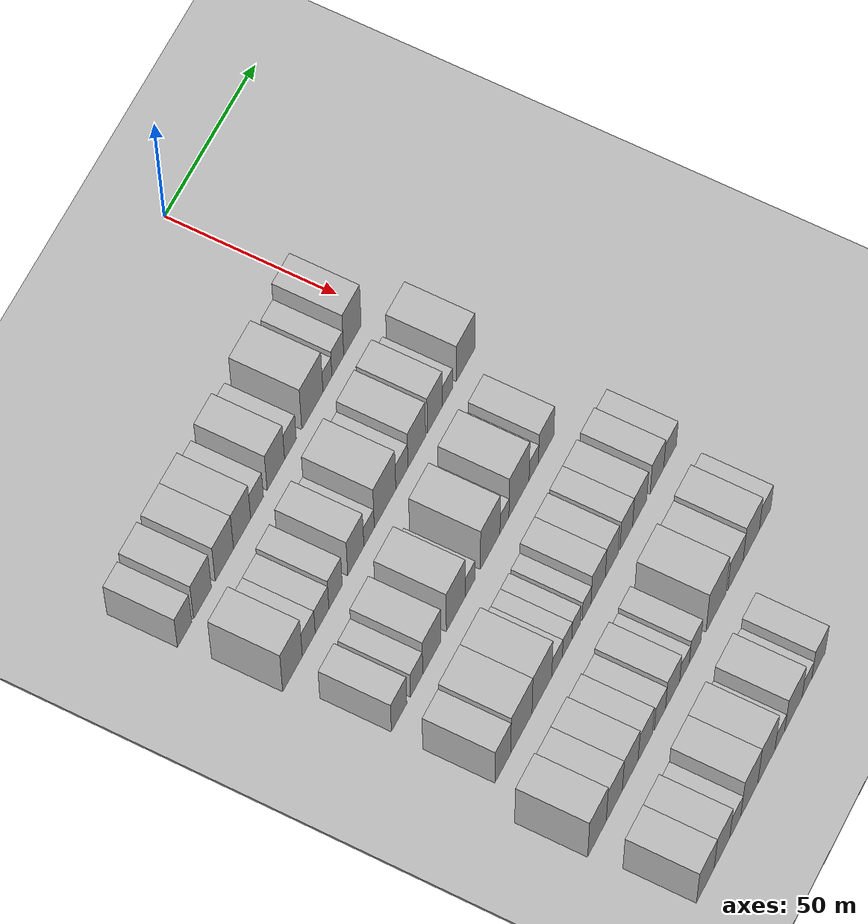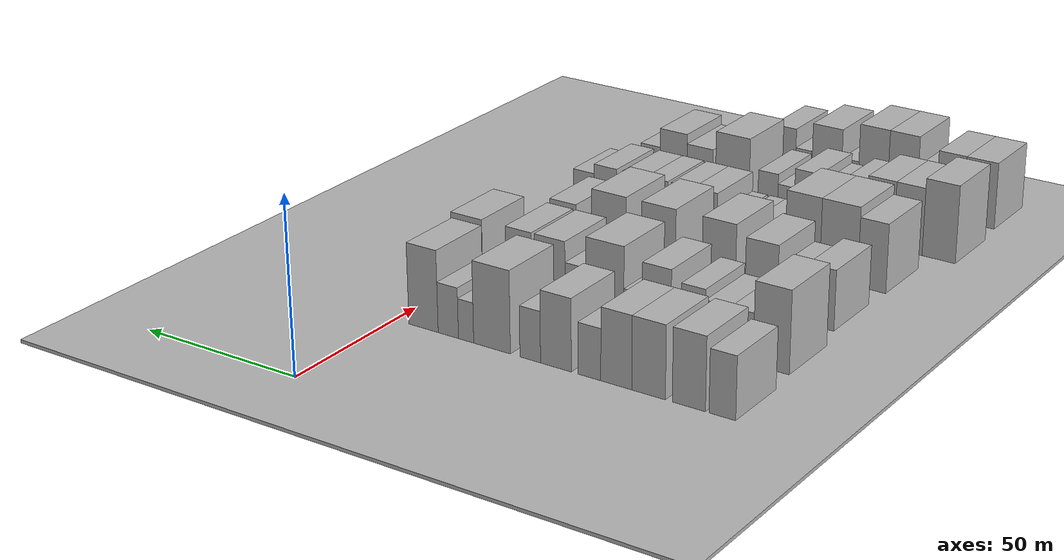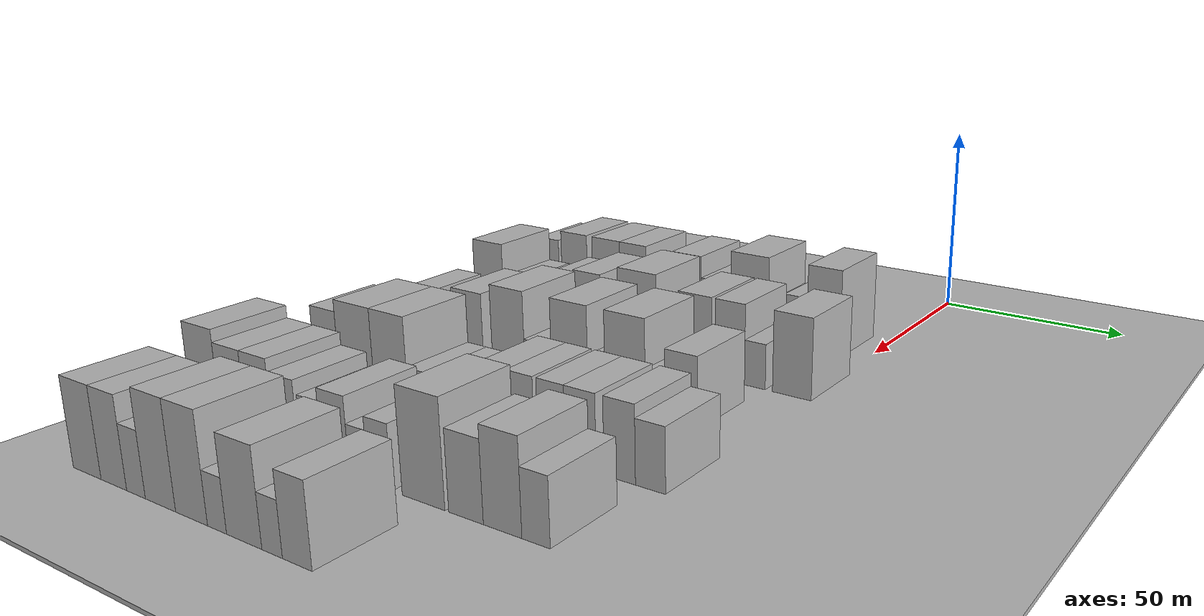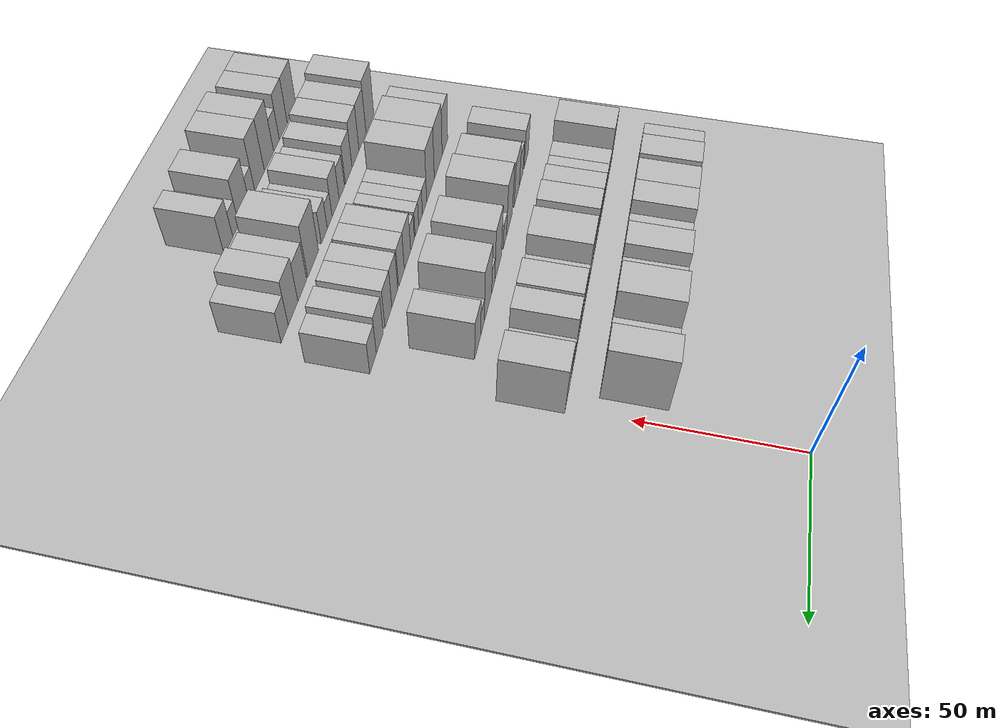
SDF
<sdf version="1.6">
 <world name="default">
  <include><name>ground_plane_1</name><uri>model://HANNAS_ground_plane</uri></include>
  <include>
   <name>ground_plane_2</name>
   <uri>model://HANNAS_ground_plane</uri>
   <pose>100 0 0  0 0 0</pose>
  </include>
  <model name="building_44">
   <static>1</static>
   <pose>50.0000 -101.7398 0 0.000000 0.000000 0.000000</pose>
   <link name="link">
    <pose>0 0 9.00 0 0 0</pose>
    <collision name="collision"><geometry><box><size>20.0000 7.5646 18.0000</size></box></geometry></collision>
    <visual name="visual">
     <cast_shadows>0</cast_shadows>
     <geometry><box><size>20.0000 7.5646 18.0000</size></box></geometry>
     <material>
      <script>
       <uri>model://HANNAS_wall/materials/scripts</uri>
       <uri>model://HANNAS_wall/materials/textures</uri>
       <name>vrc/HANNAS_wall</name>
      </script>
     </material>
    </visual>
   </link>
  </model>
  <model name="building_45">
   <static>1</static>
   <pose>50.0000 -92.1891 0 0.000000 0.000000 0.000000</pose>
   <link name="link">
    <pose>0 0 10.50 0 0 0</pose>
    <collision name="collision"><geometry><box><size>20.0000 9.5367 21.0000</size></box></geometry></collision>
    <visual name="visual">
     <cast_shadows>0</cast_shadows>
     <geometry><box><size>20.0000 9.5367 21.0000</size></box></geometry>
     <material>
      <script>
       <uri>model://HANNAS_wall/materials/scripts</uri>
       <uri>model://HANNAS_wall/materials/textures</uri>
       <name>vrc/HANNAS_wall</name>
      </script>
     </material>
    </visual>
   </link>
  </model>
  <model name="building_46">
   <static>1</static>
   <pose>50.0000 -80.4758 0 0.000000 0.000000 0.000000</pose>
   <link name="link">
    <pose>0 0 10.50 0 0 0</pose>
    <collision name="collision"><geometry><box><size>20.0000 9.8900 21.0000</size></box></geometry></collision>
    <visual name="visual">
     <cast_shadows>0</cast_shadows>
     <geometry><box><size>20.0000 9.8900 21.0000</size></box></geometry>
     <material>
      <script>
       <uri>model://HANNAS_wall/materials/scripts</uri>
       <uri>model://HANNAS_wall/materials/textures</uri>
       <name>vrc/HANNAS_wall</name>
      </script>
     </material>
    </visual>
   </link>
  </model>
  <model name="building_47">
   <static>1</static>
   <pose>50.0000 -70.9077 0 0.000000 0.000000 0.000000</pose>
   <link name="link">
    <pose>0 0 10.50 0 0 0</pose>
    <collision name="collision"><geometry><box><size>20.0000 9.2462 21.0000</size></box></geometry></collision>
    <visual name="visual">
     <cast_shadows>0</cast_shadows>
     <geometry><box><size>20.0000 9.2462 21.0000</size></box></geometry>
     <material>
      <script>
       <uri>model://HANNAS_wall/materials/scripts</uri>
       <uri>model://HANNAS_wall/materials/textures</uri>
       <name>vrc/HANNAS_wall</name>
      </script>
     </material>
    </visual>
   </link>
  </model>
  <model name="building_48">
   <static>1</static>
   <pose>50.0000 -62.8196 0 0.000000 0.000000 0.000000</pose>
   <link name="link">
    <pose>0 0 7.50 0 0 0</pose>
    <collision name="collision"><geometry><box><size>20.0000 6.9300 15.0000</size></box></geometry></collision>
    <visual name="visual">
     <cast_shadows>0</cast_shadows>
     <geometry><box><size>20.0000 6.9300 15.0000</size></box></geometry>
     <material>
      <script>
       <uri>model://HANNAS_wall/materials/scripts</uri>
       <uri>model://HANNAS_wall/materials/textures</uri>
       <name>vrc/HANNAS_wall</name>
      </script>
     </material>
    </visual>
   </link>
  </model>
  <model name="building_49">
   <static>1</static>
   <pose>50.0000 -52.5954 0 0.000000 0.000000 0.000000</pose>
   <link name="link">
    <pose>0 0 10.50 0 0 0</pose>
    <collision name="collision"><geometry><box><size>20.0000 9.5186 21.0000</size></box></geometry></collision>
    <visual name="visual">
     <cast_shadows>0</cast_shadows>
     <geometry><box><size>20.0000 9.5186 21.0000</size></box></geometry>
     <material>
      <script>
       <uri>model://HANNAS_wall/materials/scripts</uri>
       <uri>model://HANNAS_wall/materials/textures</uri>
       <name>vrc/HANNAS_wall</name>
      </script>
     </material>
    </visual>
   </link>
  </model>
  <model name="building_50">
   <static>1</static>
   <pose>50.0000 -44.6159 0 0.000000 0.000000 0.000000</pose>
   <link name="link">
    <pose>0 0 7.50 0 0 0</pose>
    <collision name="collision"><geometry><box><size>20.0000 6.4404 15.0000</size></box></geometry></collision>
    <visual name="visual">
     <cast_shadows>0</cast_shadows>
     <geometry><box><size>20.0000 6.4404 15.0000</size></box></geometry>
     <material>
      <script>
       <uri>model://HANNAS_wall/materials/scripts</uri>
       <uri>model://HANNAS_wall/materials/textures</uri>
       <name>vrc/HANNAS_wall</name>
      </script>
     </material>
    </visual>
   </link>
  </model>
  <model name="building_51">
   <static>1</static>
   <pose>50.0000 -32.5329 0 0.000000 0.000000 0.000000</pose>
   <link name="link">
    <pose>0 0 12.00 0 0 0</pose>
    <collision name="collision"><geometry><box><size>20.0000 11.7255 24.0000</size></box></geometry></collision>
    <visual name="visual">
     <cast_shadows>0</cast_shadows>
     <geometry><box><size>20.0000 11.7255 24.0000</size></box></geometry>
     <material>
      <script>
       <uri>model://HANNAS_wall/materials/scripts</uri>
       <uri>model://HANNAS_wall/materials/textures</uri>
       <name>vrc/HANNAS_wall</name>
      </script>
     </material>
    </visual>
   </link>
  </model>
  <model name="building_52">
   <static>1</static>
   <pose>50.0000 -24.2009 0 0.000000 0.000000 0.000000</pose>
   <link name="link">
    <pose>0 0 6.00 0 0 0</pose>
    <collision name="collision"><geometry><box><size>20.0000 4.9386 12.0000</size></box></geometry></collision>
    <visual name="visual">
     <cast_shadows>0</cast_shadows>
     <geometry><box><size>20.0000 4.9386 12.0000</size></box></geometry>
     <material>
      <script>
       <uri>model://HANNAS_wall/materials/scripts</uri>
       <uri>model://HANNAS_wall/materials/textures</uri>
       <name>vrc/HANNAS_wall</name>
      </script>
     </material>
    </visual>
   </link>
  </model>
  <model name="building_53">
   <static>1</static>
   <pose>50.0000 -18.4203 0 0.000000 0.000000 0.000000</pose>
   <link name="link">
    <pose>0 0 7.50 0 0 0</pose>
    <collision name="collision"><geometry><box><size>20.0000 6.6225 15.0000</size></box></geometry></collision>
    <visual name="visual">
     <cast_shadows>0</cast_shadows>
     <geometry><box><size>20.0000 6.6225 15.0000</size></box></geometry>
     <material>
      <script>
       <uri>model://HANNAS_wall/materials/scripts</uri>
       <uri>model://HANNAS_wall/materials/textures</uri>
       <name>vrc/HANNAS_wall</name>
      </script>
     </material>
    </visual>
   </link>
  </model>
  <model name="building_54">
   <static>1</static>
   <pose>50.0000 -10.2577 0 0.000000 0.000000 0.000000</pose>
   <link name="link">
    <pose>0 0 12.00 0 0 0</pose>
    <collision name="collision"><geometry><box><size>20.0000 9.7029 24.0000</size></box></geometry></collision>
    <visual name="visual">
     <cast_shadows>0</cast_shadows>
     <geometry><box><size>20.0000 9.7029 24.0000</size></box></geometry>
     <material>
      <script>
       <uri>model://HANNAS_wall/materials/scripts</uri>
       <uri>model://HANNAS_wall/materials/textures</uri>
       <name>vrc/HANNAS_wall</name>
      </script>
     </material>
    </visual>
   </link>
  </model>
  <model name="building_154">
   <static>1</static>
   <pose>79.0000 -99.0102 0 0.000000 0.000000 0.000000</pose>
   <link name="link">
    <pose>0 0 12.00 0 0 0</pose>
    <collision name="collision"><geometry><box><size>20.0000 10.5636 24.0000</size></box></geometry></collision>
    <visual name="visual">
     <cast_shadows>0</cast_shadows>
     <geometry><box><size>20.0000 10.5636 24.0000</size></box></geometry>
     <material>
      <script>
       <uri>model://HANNAS_wall/materials/scripts</uri>
       <uri>model://HANNAS_wall/materials/textures</uri>
       <name>vrc/HANNAS_wall</name>
      </script>
     </material>
    </visual>
   </link>
  </model>
  <model name="building_155">
   <static>1</static>
   <pose>79.0000 -90.2369 0 0.000000 0.000000 0.000000</pose>
   <link name="link">
    <pose>0 0 7.50 0 0 0</pose>
    <collision name="collision"><geometry><box><size>20.0000 6.9829 15.0000</size></box></geometry></collision>
    <visual name="visual">
     <cast_shadows>0</cast_shadows>
     <geometry><box><size>20.0000 6.9829 15.0000</size></box></geometry>
     <material>
      <script>
       <uri>model://HANNAS_wall/materials/scripts</uri>
       <uri>model://HANNAS_wall/materials/textures</uri>
       <name>vrc/HANNAS_wall</name>
      </script>
     </material>
    </visual>
   </link>
  </model>
  <model name="building_156">
   <static>1</static>
   <pose>79.0000 -83.0344 0 0.000000 0.000000 0.000000</pose>
   <link name="link">
    <pose>0 0 7.50 0 0 0</pose>
    <collision name="collision"><geometry><box><size>20.0000 7.4222 15.0000</size></box></geometry></collision>
    <visual name="visual">
     <cast_shadows>0</cast_shadows>
     <geometry><box><size>20.0000 7.4222 15.0000</size></box></geometry>
     <material>
      <script>
       <uri>model://HANNAS_wall/materials/scripts</uri>
       <uri>model://HANNAS_wall/materials/textures</uri>
       <name>vrc/HANNAS_wall</name>
      </script>
     </material>
    </visual>
   </link>
  </model>
  <model name="building_157">
   <static>1</static>
   <pose>79.0000 -75.6865 0 0.000000 0.000000 0.000000</pose>
   <link name="link">
    <pose>0 0 9.00 0 0 0</pose>
    <collision name="collision"><geometry><box><size>20.0000 7.2735 18.0000</size></box></geometry></collision>
    <visual name="visual">
     <cast_shadows>0</cast_shadows>
     <geometry><box><size>20.0000 7.2735 18.0000</size></box></geometry>
     <material>
      <script>
       <uri>model://HANNAS_wall/materials/scripts</uri>
       <uri>model://HANNAS_wall/materials/textures</uri>
       <name>vrc/HANNAS_wall</name>
      </script>
     </material>
    </visual>
   </link>
  </model>
  <model name="building_158">
   <static>1</static>
   <pose>79.0000 -64.6201 0 0.000000 0.000000 0.000000</pose>
   <link name="link">
    <pose>0 0 10.50 0 0 0</pose>
    <collision name="collision"><geometry><box><size>20.0000 8.8594 21.0000</size></box></geometry></collision>
    <visual name="visual">
     <cast_shadows>0</cast_shadows>
     <geometry><box><size>20.0000 8.8594 21.0000</size></box></geometry>
     <material>
      <script>
       <uri>model://HANNAS_wall/materials/scripts</uri>
       <uri>model://HANNAS_wall/materials/textures</uri>
       <name>vrc/HANNAS_wall</name>
      </script>
     </material>
    </visual>
   </link>
  </model>
  <model name="building_159">
   <static>1</static>
   <pose>79.0000 -57.3245 0 0.000000 0.000000 0.000000</pose>
   <link name="link">
    <pose>0 0 6.00 0 0 0</pose>
    <collision name="collision"><geometry><box><size>20.0000 5.7318 12.0000</size></box></geometry></collision>
    <visual name="visual">
     <cast_shadows>0</cast_shadows>
     <geometry><box><size>20.0000 5.7318 12.0000</size></box></geometry>
     <material>
      <script>
       <uri>model://HANNAS_wall/materials/scripts</uri>
       <uri>model://HANNAS_wall/materials/textures</uri>
       <name>vrc/HANNAS_wall</name>
      </script>
     </material>
    </visual>
   </link>
  </model>
  <model name="building_160">
   <static>1</static>
   <pose>79.0000 -48.4994 0 0.000000 0.000000 0.000000</pose>
   <link name="link">
    <pose>0 0 12.00 0 0 0</pose>
    <collision name="collision"><geometry><box><size>20.0000 11.9184 24.0000</size></box></geometry></collision>
    <visual name="visual">
     <cast_shadows>0</cast_shadows>
     <geometry><box><size>20.0000 11.9184 24.0000</size></box></geometry>
     <material>
      <script>
       <uri>model://HANNAS_wall/materials/scripts</uri>
       <uri>model://HANNAS_wall/materials/textures</uri>
       <name>vrc/HANNAS_wall</name>
      </script>
     </material>
    </visual>
   </link>
  </model>
  <model name="building_161">
   <static>1</static>
   <pose>79.0000 -39.1634 0 0.000000 0.000000 0.000000</pose>
   <link name="link">
    <pose>0 0 7.50 0 0 0</pose>
    <collision name="collision"><geometry><box><size>20.0000 6.7536 15.0000</size></box></geometry></collision>
    <visual name="visual">
     <cast_shadows>0</cast_shadows>
     <geometry><box><size>20.0000 6.7536 15.0000</size></box></geometry>
     <material>
      <script>
       <uri>model://HANNAS_wall/materials/scripts</uri>
       <uri>model://HANNAS_wall/materials/textures</uri>
       <name>vrc/HANNAS_wall</name>
      </script>
     </material>
    </visual>
   </link>
  </model>
  <model name="building_162">
   <static>1</static>
   <pose>79.0000 -30.8582 0 0.000000 0.000000 0.000000</pose>
   <link name="link">
    <pose>0 0 10.50 0 0 0</pose>
    <collision name="collision"><geometry><box><size>20.0000 9.8569 21.0000</size></box></geometry></collision>
    <visual name="visual">
     <cast_shadows>0</cast_shadows>
     <geometry><box><size>20.0000 9.8569 21.0000</size></box></geometry>
     <material>
      <script>
       <uri>model://HANNAS_wall/materials/scripts</uri>
       <uri>model://HANNAS_wall/materials/textures</uri>
       <name>vrc/HANNAS_wall</name>
      </script>
     </material>
    </visual>
   </link>
  </model>
  <model name="building_163">
   <static>1</static>
   <pose>79.0000 -20.6635 0 0.000000 0.000000 0.000000</pose>
   <link name="link">
    <pose>0 0 10.50 0 0 0</pose>
    <collision name="collision"><geometry><box><size>20.0000 8.5326 21.0000</size></box></geometry></collision>
    <visual name="visual">
     <cast_shadows>0</cast_shadows>
     <geometry><box><size>20.0000 8.5326 21.0000</size></box></geometry>
     <material>
      <script>
       <uri>model://HANNAS_wall/materials/scripts</uri>
       <uri>model://HANNAS_wall/materials/textures</uri>
       <name>vrc/HANNAS_wall</name>
      </script>
     </material>
    </visual>
   </link>
  </model>
  <model name="building_164">
   <static>1</static>
   <pose>79.0000 -13.4838 0 0.000000 0.000000 0.000000</pose>
   <link name="link">
    <pose>0 0 6.00 0 0 0</pose>
    <collision name="collision"><geometry><box><size>20.0000 5.8268 12.0000</size></box></geometry></collision>
    <visual name="visual">
     <cast_shadows>0</cast_shadows>
     <geometry><box><size>20.0000 5.8268 12.0000</size></box></geometry>
     <material>
      <script>
       <uri>model://HANNAS_wall/materials/scripts</uri>
       <uri>model://HANNAS_wall/materials/textures</uri>
       <name>vrc/HANNAS_wall</name>
      </script>
     </material>
    </visual>
   </link>
  </model>
  <model name="building_165">
   <static>1</static>
   <pose>79.0000 -3.3430 0 0.000000 0.000000 0.000000</pose>
   <link name="link">
    <pose>0 0 10.50 0 0 0</pose>
    <collision name="collision"><geometry><box><size>20.0000 10.4548 21.0000</size></box></geometry></collision>
    <visual name="visual">
     <cast_shadows>0</cast_shadows>
     <geometry><box><size>20.0000 10.4548 21.0000</size></box></geometry>
     <material>
      <script>
       <uri>model://HANNAS_wall/materials/scripts</uri>
       <uri>model://HANNAS_wall/materials/textures</uri>
       <name>vrc/HANNAS_wall</name>
      </script>
     </material>
    </visual>
   </link>
  </model>
  <model name="building_264">
   <static>1</static>
   <pose>108.0000 -97.4173 0 0.000000 0.000000 0.000000</pose>
   <link name="link">
    <pose>0 0 9.00 0 0 0</pose>
    <collision name="collision"><geometry><box><size>20.0000 8.3922 18.0000</size></box></geometry></collision>
    <visual name="visual">
     <cast_shadows>0</cast_shadows>
     <geometry><box><size>20.0000 8.3922 18.0000</size></box></geometry>
     <material>
      <script>
       <uri>model://HANNAS_wall/materials/scripts</uri>
       <uri>model://HANNAS_wall/materials/textures</uri>
       <name>vrc/HANNAS_wall</name>
      </script>
     </material>
    </visual>
   </link>
  </model>
  <model name="building_265">
   <static>1</static>
   <pose>108.0000 -87.8457 0 0.000000 0.000000 0.000000</pose>
   <link name="link">
    <pose>0 0 7.50 0 0 0</pose>
    <collision name="collision"><geometry><box><size>20.0000 6.7509 15.0000</size></box></geometry></collision>
    <visual name="visual">
     <cast_shadows>0</cast_shadows>
     <geometry><box><size>20.0000 6.7509 15.0000</size></box></geometry>
     <material>
      <script>
       <uri>model://HANNAS_wall/materials/scripts</uri>
       <uri>model://HANNAS_wall/materials/textures</uri>
       <name>vrc/HANNAS_wall</name>
      </script>
     </material>
    </visual>
   </link>
  </model>
  <model name="building_266">
   <static>1</static>
   <pose>108.0000 -79.4733 0 0.000000 0.000000 0.000000</pose>
   <link name="link">
    <pose>0 0 10.50 0 0 0</pose>
    <collision name="collision"><geometry><box><size>20.0000 9.9939 21.0000</size></box></geometry></collision>
    <visual name="visual">
     <cast_shadows>0</cast_shadows>
     <geometry><box><size>20.0000 9.9939 21.0000</size></box></geometry>
     <material>
      <script>
       <uri>model://HANNAS_wall/materials/scripts</uri>
       <uri>model://HANNAS_wall/materials/textures</uri>
       <name>vrc/HANNAS_wall</name>
      </script>
     </material>
    </visual>
   </link>
  </model>
  <model name="building_267">
   <static>1</static>
   <pose>108.0000 -66.2209 0 0.000000 0.000000 0.000000</pose>
   <link name="link">
    <pose>0 0 12.00 0 0 0</pose>
    <collision name="collision"><geometry><box><size>20.0000 10.5109 24.0000</size></box></geometry></collision>
    <visual name="visual">
     <cast_shadows>0</cast_shadows>
     <geometry><box><size>20.0000 10.5109 24.0000</size></box></geometry>
     <material>
      <script>
       <uri>model://HANNAS_wall/materials/scripts</uri>
       <uri>model://HANNAS_wall/materials/textures</uri>
       <name>vrc/HANNAS_wall</name>
      </script>
     </material>
    </visual>
   </link>
  </model>
  <model name="building_268">
   <static>1</static>
   <pose>108.0000 -58.2431 0 0.000000 0.000000 0.000000</pose>
   <link name="link">
    <pose>0 0 6.00 0 0 0</pose>
    <collision name="collision"><geometry><box><size>20.0000 5.4449 12.0000</size></box></geometry></collision>
    <visual name="visual">
     <cast_shadows>0</cast_shadows>
     <geometry><box><size>20.0000 5.4449 12.0000</size></box></geometry>
     <material>
      <script>
       <uri>model://HANNAS_wall/materials/scripts</uri>
       <uri>model://HANNAS_wall/materials/textures</uri>
       <name>vrc/HANNAS_wall</name>
      </script>
     </material>
    </visual>
   </link>
  </model>
  <model name="building_269">
   <static>1</static>
   <pose>108.0000 -47.0464 0 0.000000 0.000000 0.000000</pose>
   <link name="link">
    <pose>0 0 12.00 0 0 0</pose>
    <collision name="collision"><geometry><box><size>20.0000 10.9485 24.0000</size></box></geometry></collision>
    <visual name="visual">
     <cast_shadows>0</cast_shadows>
     <geometry><box><size>20.0000 10.9485 24.0000</size></box></geometry>
     <material>
      <script>
       <uri>model://HANNAS_wall/materials/scripts</uri>
       <uri>model://HANNAS_wall/materials/textures</uri>
       <name>vrc/HANNAS_wall</name>
      </script>
     </material>
    </visual>
   </link>
  </model>
  <model name="building_270">
   <static>1</static>
   <pose>108.0000 -39.0539 0 0.000000 0.000000 0.000000</pose>
   <link name="link">
    <pose>0 0 6.00 0 0 0</pose>
    <collision name="collision"><geometry><box><size>20.0000 5.0365 12.0000</size></box></geometry></collision>
    <visual name="visual">
     <cast_shadows>0</cast_shadows>
     <geometry><box><size>20.0000 5.0365 12.0000</size></box></geometry>
     <material>
      <script>
       <uri>model://HANNAS_wall/materials/scripts</uri>
       <uri>model://HANNAS_wall/materials/textures</uri>
       <name>vrc/HANNAS_wall</name>
      </script>
     </material>
    </visual>
   </link>
  </model>
  <model name="building_271">
   <static>1</static>
   <pose>108.0000 -30.8308 0 0.000000 0.000000 0.000000</pose>
   <link name="link">
    <pose>0 0 12.00 0 0 0</pose>
    <collision name="collision"><geometry><box><size>20.0000 11.4097 24.0000</size></box></geometry></collision>
    <visual name="visual">
     <cast_shadows>0</cast_shadows>
     <geometry><box><size>20.0000 11.4097 24.0000</size></box></geometry>
     <material>
      <script>
       <uri>model://HANNAS_wall/materials/scripts</uri>
       <uri>model://HANNAS_wall/materials/textures</uri>
       <name>vrc/HANNAS_wall</name>
      </script>
     </material>
    </visual>
   </link>
  </model>
  <model name="building_272">
   <static>1</static>
   <pose>108.0000 -22.4732 0 0.000000 0.000000 0.000000</pose>
   <link name="link">
    <pose>0 0 6.00 0 0 0</pose>
    <collision name="collision"><geometry><box><size>20.0000 5.3056 12.0000</size></box></geometry></collision>
    <visual name="visual">
     <cast_shadows>0</cast_shadows>
     <geometry><box><size>20.0000 5.3056 12.0000</size></box></geometry>
     <material>
      <script>
       <uri>model://HANNAS_wall/materials/scripts</uri>
       <uri>model://HANNAS_wall/materials/textures</uri>
       <name>vrc/HANNAS_wall</name>
      </script>
     </material>
    </visual>
   </link>
  </model>
  <model name="building_273">
   <static>1</static>
   <pose>108.0000 -15.4132 0 0.000000 0.000000 0.000000</pose>
   <link name="link">
    <pose>0 0 9.00 0 0 0</pose>
    <collision name="collision"><geometry><box><size>20.0000 8.8144 18.0000</size></box></geometry></collision>
    <visual name="visual">
     <cast_shadows>0</cast_shadows>
     <geometry><box><size>20.0000 8.8144 18.0000</size></box></geometry>
     <material>
      <script>
       <uri>model://HANNAS_wall/materials/scripts</uri>
       <uri>model://HANNAS_wall/materials/textures</uri>
       <name>vrc/HANNAS_wall</name>
      </script>
     </material>
    </visual>
   </link>
  </model>
  <model name="building_374">
   <static>1</static>
   <pose>137.0000 -97.8527 0 0.000000 0.000000 0.000000</pose>
   <link name="link">
    <pose>0 0 10.50 0 0 0</pose>
    <collision name="collision"><geometry><box><size>20.0000 8.6531 21.0000</size></box></geometry></collision>
    <visual name="visual">
     <cast_shadows>0</cast_shadows>
     <geometry><box><size>20.0000 8.6531 21.0000</size></box></geometry>
     <material>
      <script>
       <uri>model://HANNAS_wall/materials/scripts</uri>
       <uri>model://HANNAS_wall/materials/textures</uri>
       <name>vrc/HANNAS_wall</name>
      </script>
     </material>
    </visual>
   </link>
  </model>
  <model name="building_375">
   <static>1</static>
   <pose>137.0000 -87.6049 0 0.000000 0.000000 0.000000</pose>
   <link name="link">
    <pose>0 0 12.00 0 0 0</pose>
    <collision name="collision"><geometry><box><size>20.0000 11.8426 24.0000</size></box></geometry></collision>
    <visual name="visual">
     <cast_shadows>0</cast_shadows>
     <geometry><box><size>20.0000 11.8426 24.0000</size></box></geometry>
     <material>
      <script>
       <uri>model://HANNAS_wall/materials/scripts</uri>
       <uri>model://HANNAS_wall/materials/textures</uri>
       <name>vrc/HANNAS_wall</name>
      </script>
     </material>
    </visual>
   </link>
  </model>
  <model name="building_376">
   <static>1</static>
   <pose>137.0000 -76.1682 0 0.000000 0.000000 0.000000</pose>
   <link name="link">
    <pose>0 0 12.00 0 0 0</pose>
    <collision name="collision"><geometry><box><size>20.0000 11.0306 24.0000</size></box></geometry></collision>
    <visual name="visual">
     <cast_shadows>0</cast_shadows>
     <geometry><box><size>20.0000 11.0306 24.0000</size></box></geometry>
     <material>
      <script>
       <uri>model://HANNAS_wall/materials/scripts</uri>
       <uri>model://HANNAS_wall/materials/textures</uri>
       <name>vrc/HANNAS_wall</name>
      </script>
     </material>
    </visual>
   </link>
  </model>
  <model name="building_377">
   <static>1</static>
   <pose>137.0000 -67.6680 0 0.000000 0.000000 0.000000</pose>
   <link name="link">
    <pose>0 0 6.00 0 0 0</pose>
    <collision name="collision"><geometry><box><size>20.0000 5.9698 12.0000</size></box></geometry></collision>
    <visual name="visual">
     <cast_shadows>0</cast_shadows>
     <geometry><box><size>20.0000 5.9698 12.0000</size></box></geometry>
     <material>
      <script>
       <uri>model://HANNAS_wall/materials/scripts</uri>
       <uri>model://HANNAS_wall/materials/textures</uri>
       <name>vrc/HANNAS_wall</name>
      </script>
     </material>
    </visual>
   </link>
  </model>
  <model name="building_378">
   <static>1</static>
   <pose>137.0000 -62.0431 0 0.000000 0.000000 0.000000</pose>
   <link name="link">
    <pose>0 0 6.00 0 0 0</pose>
    <collision name="collision"><geometry><box><size>20.0000 5.2800 12.0000</size></box></geometry></collision>
    <visual name="visual">
     <cast_shadows>0</cast_shadows>
     <geometry><box><size>20.0000 5.2800 12.0000</size></box></geometry>
     <material>
      <script>
       <uri>model://HANNAS_wall/materials/scripts</uri>
       <uri>model://HANNAS_wall/materials/textures</uri>
       <name>vrc/HANNAS_wall</name>
      </script>
     </material>
    </visual>
   </link>
  </model>
  <model name="building_379">
   <static>1</static>
   <pose>137.0000 -56.9880 0 0.000000 0.000000 0.000000</pose>
   <link name="link">
    <pose>0 0 6.00 0 0 0</pose>
    <collision name="collision"><geometry><box><size>20.0000 4.8302 12.0000</size></box></geometry></collision>
    <visual name="visual">
     <cast_shadows>0</cast_shadows>
     <geometry><box><size>20.0000 4.8302 12.0000</size></box></geometry>
     <material>
      <script>
       <uri>model://HANNAS_wall/materials/scripts</uri>
       <uri>model://HANNAS_wall/materials/textures</uri>
       <name>vrc/HANNAS_wall</name>
      </script>
     </material>
    </visual>
   </link>
  </model>
  <model name="building_380">
   <static>1</static>
   <pose>137.0000 -51.0605 0 0.000000 0.000000 0.000000</pose>
   <link name="link">
    <pose>0 0 6.00 0 0 0</pose>
    <collision name="collision"><geometry><box><size>20.0000 5.0250 12.0000</size></box></geometry></collision>
    <visual name="visual">
     <cast_shadows>0</cast_shadows>
     <geometry><box><size>20.0000 5.0250 12.0000</size></box></geometry>
     <material>
      <script>
       <uri>model://HANNAS_wall/materials/scripts</uri>
       <uri>model://HANNAS_wall/materials/textures</uri>
       <name>vrc/HANNAS_wall</name>
      </script>
     </material>
    </visual>
   </link>
  </model>
  <model name="building_381">
   <static>1</static>
   <pose>137.0000 -44.4722 0 0.000000 0.000000 0.000000</pose>
   <link name="link">
    <pose>0 0 9.00 0 0 0</pose>
    <collision name="collision"><geometry><box><size>20.0000 8.1515 18.0000</size></box></geometry></collision>
    <visual name="visual">
     <cast_shadows>0</cast_shadows>
     <geometry><box><size>20.0000 8.1515 18.0000</size></box></geometry>
     <material>
      <script>
       <uri>model://HANNAS_wall/materials/scripts</uri>
       <uri>model://HANNAS_wall/materials/textures</uri>
       <name>vrc/HANNAS_wall</name>
      </script>
     </material>
    </visual>
   </link>
  </model>
  <model name="building_382">
   <static>1</static>
   <pose>137.0000 -36.7476 0 0.000000 0.000000 0.000000</pose>
   <link name="link">
    <pose>0 0 9.00 0 0 0</pose>
    <collision name="collision"><geometry><box><size>20.0000 7.2979 18.0000</size></box></geometry></collision>
    <visual name="visual">
     <cast_shadows>0</cast_shadows>
     <geometry><box><size>20.0000 7.2979 18.0000</size></box></geometry>
     <material>
      <script>
       <uri>model://HANNAS_wall/materials/scripts</uri>
       <uri>model://HANNAS_wall/materials/textures</uri>
       <name>vrc/HANNAS_wall</name>
      </script>
     </material>
    </visual>
   </link>
  </model>
  <model name="building_383">
   <static>1</static>
   <pose>137.0000 -28.4407 0 0.000000 0.000000 0.000000</pose>
   <link name="link">
    <pose>0 0 9.00 0 0 0</pose>
    <collision name="collision"><geometry><box><size>20.0000 7.3158 18.0000</size></box></geometry></collision>
    <visual name="visual">
     <cast_shadows>0</cast_shadows>
     <geometry><box><size>20.0000 7.3158 18.0000</size></box></geometry>
     <material>
      <script>
       <uri>model://HANNAS_wall/materials/scripts</uri>
       <uri>model://HANNAS_wall/materials/textures</uri>
       <name>vrc/HANNAS_wall</name>
      </script>
     </material>
    </visual>
   </link>
  </model>
  <model name="building_384">
   <static>1</static>
   <pose>137.0000 -20.7180 0 0.000000 0.000000 0.000000</pose>
   <link name="link">
    <pose>0 0 9.00 0 0 0</pose>
    <collision name="collision"><geometry><box><size>20.0000 8.1296 18.0000</size></box></geometry></collision>
    <visual name="visual">
     <cast_shadows>0</cast_shadows>
     <geometry><box><size>20.0000 8.1296 18.0000</size></box></geometry>
     <material>
      <script>
       <uri>model://HANNAS_wall/materials/scripts</uri>
       <uri>model://HANNAS_wall/materials/textures</uri>
       <name>vrc/HANNAS_wall</name>
      </script>
     </material>
    </visual>
   </link>
  </model>
  <model name="building_385">
   <static>1</static>
   <pose>137.0000 -10.7193 0 0.000000 0.000000 0.000000</pose>
   <link name="link">
    <pose>0 0 9.00 0 0 0</pose>
    <collision name="collision"><geometry><box><size>20.0000 7.8680 18.0000</size></box></geometry></collision>
    <visual name="visual">
     <cast_shadows>0</cast_shadows>
     <geometry><box><size>20.0000 7.8680 18.0000</size></box></geometry>
     <material>
      <script>
       <uri>model://HANNAS_wall/materials/scripts</uri>
       <uri>model://HANNAS_wall/materials/textures</uri>
       <name>vrc/HANNAS_wall</name>
      </script>
     </material>
    </visual>
   </link>
  </model>
  <model name="building_386">
   <static>1</static>
   <pose>137.0000 -3.1123 0 0.000000 0.000000 0.000000</pose>
   <link name="link">
    <pose>0 0 7.50 0 0 0</pose>
    <collision name="collision"><geometry><box><size>20.0000 7.3459 15.0000</size></box></geometry></collision>
    <visual name="visual">
     <cast_shadows>0</cast_shadows>
     <geometry><box><size>20.0000 7.3459 15.0000</size></box></geometry>
     <material>
      <script>
       <uri>model://HANNAS_wall/materials/scripts</uri>
       <uri>model://HANNAS_wall/materials/textures</uri>
       <name>vrc/HANNAS_wall</name>
      </script>
     </material>
    </visual>
   </link>
  </model>
  <model name="building_494">
   <static>1</static>
   <pose>166.0000 -104.1476 0 0.000000 0.000000 0.000000</pose>
   <link name="link">
    <pose>0 0 12.00 0 0 0</pose>
    <collision name="collision"><geometry><box><size>20.0000 10.3253 24.0000</size></box></geometry></collision>
    <visual name="visual">
     <cast_shadows>0</cast_shadows>
     <geometry><box><size>20.0000 10.3253 24.0000</size></box></geometry>
     <material>
      <script>
       <uri>model://HANNAS_wall/materials/scripts</uri>
       <uri>model://HANNAS_wall/materials/textures</uri>
       <name>vrc/HANNAS_wall</name>
      </script>
     </material>
    </visual>
   </link>
  </model>
  <model name="building_495">
   <static>1</static>
   <pose>166.0000 -94.4774 0 0.000000 0.000000 0.000000</pose>
   <link name="link">
    <pose>0 0 10.50 0 0 0</pose>
    <collision name="collision"><geometry><box><size>20.0000 9.0151 21.0000</size></box></geometry></collision>
    <visual name="visual">
     <cast_shadows>0</cast_shadows>
     <geometry><box><size>20.0000 9.0151 21.0000</size></box></geometry>
     <material>
      <script>
       <uri>model://HANNAS_wall/materials/scripts</uri>
       <uri>model://HANNAS_wall/materials/textures</uri>
       <name>vrc/HANNAS_wall</name>
      </script>
     </material>
    </visual>
   </link>
  </model>
  <model name="building_496">
   <static>1</static>
   <pose>166.0000 -85.5541 0 0.000000 0.000000 0.000000</pose>
   <link name="link">
    <pose>0 0 10.50 0 0 0</pose>
    <collision name="collision"><geometry><box><size>20.0000 8.8315 21.0000</size></box></geometry></collision>
    <visual name="visual">
     <cast_shadows>0</cast_shadows>
     <geometry><box><size>20.0000 8.8315 21.0000</size></box></geometry>
     <material>
      <script>
       <uri>model://HANNAS_wall/materials/scripts</uri>
       <uri>model://HANNAS_wall/materials/textures</uri>
       <name>vrc/HANNAS_wall</name>
      </script>
     </material>
    </visual>
   </link>
  </model>
  <model name="building_497">
   <static>1</static>
   <pose>166.0000 -77.0561 0 0.000000 0.000000 0.000000</pose>
   <link name="link">
    <pose>0 0 9.00 0 0 0</pose>
    <collision name="collision"><geometry><box><size>20.0000 8.1645 18.0000</size></box></geometry></collision>
    <visual name="visual">
     <cast_shadows>0</cast_shadows>
     <geometry><box><size>20.0000 8.1645 18.0000</size></box></geometry>
     <material>
      <script>
       <uri>model://HANNAS_wall/materials/scripts</uri>
       <uri>model://HANNAS_wall/materials/textures</uri>
       <name>vrc/HANNAS_wall</name>
      </script>
     </material>
    </visual>
   </link>
  </model>
  <model name="building_498">
   <static>1</static>
   <pose>166.0000 -68.7834 0 0.000000 0.000000 0.000000</pose>
   <link name="link">
    <pose>0 0 7.50 0 0 0</pose>
    <collision name="collision"><geometry><box><size>20.0000 6.3811 15.0000</size></box></geometry></collision>
    <visual name="visual">
     <cast_shadows>0</cast_shadows>
     <geometry><box><size>20.0000 6.3811 15.0000</size></box></geometry>
     <material>
      <script>
       <uri>model://HANNAS_wall/materials/scripts</uri>
       <uri>model://HANNAS_wall/materials/textures</uri>
       <name>vrc/HANNAS_wall</name>
      </script>
     </material>
    </visual>
   </link>
  </model>
  <model name="building_499">
   <static>1</static>
   <pose>166.0000 -61.5529 0 0.000000 0.000000 0.000000</pose>
   <link name="link">
    <pose>0 0 9.00 0 0 0</pose>
    <collision name="collision"><geometry><box><size>20.0000 8.0798 18.0000</size></box></geometry></collision>
    <visual name="visual">
     <cast_shadows>0</cast_shadows>
     <geometry><box><size>20.0000 8.0798 18.0000</size></box></geometry>
     <material>
      <script>
       <uri>model://HANNAS_wall/materials/scripts</uri>
       <uri>model://HANNAS_wall/materials/textures</uri>
       <name>vrc/HANNAS_wall</name>
      </script>
     </material>
    </visual>
   </link>
  </model>
  <model name="building_500">
   <static>1</static>
   <pose>166.0000 -54.7683 0 0.000000 0.000000 0.000000</pose>
   <link name="link">
    <pose>0 0 6.00 0 0 0</pose>
    <collision name="collision"><geometry><box><size>20.0000 5.4895 12.0000</size></box></geometry></collision>
    <visual name="visual">
     <cast_shadows>0</cast_shadows>
     <geometry><box><size>20.0000 5.4895 12.0000</size></box></geometry>
     <material>
      <script>
       <uri>model://HANNAS_wall/materials/scripts</uri>
       <uri>model://HANNAS_wall/materials/textures</uri>
       <name>vrc/HANNAS_wall</name>
      </script>
     </material>
    </visual>
   </link>
  </model>
  <model name="building_501">
   <static>1</static>
   <pose>166.0000 -48.6984 0 0.000000 0.000000 0.000000</pose>
   <link name="link">
    <pose>0 0 7.50 0 0 0</pose>
    <collision name="collision"><geometry><box><size>20.0000 6.6503 15.0000</size></box></geometry></collision>
    <visual name="visual">
     <cast_shadows>0</cast_shadows>
     <geometry><box><size>20.0000 6.6503 15.0000</size></box></geometry>
     <material>
      <script>
       <uri>model://HANNAS_wall/materials/scripts</uri>
       <uri>model://HANNAS_wall/materials/textures</uri>
       <name>vrc/HANNAS_wall</name>
      </script>
     </material>
    </visual>
   </link>
  </model>
  <model name="building_502">
   <static>1</static>
   <pose>166.0000 -36.5877 0 0.000000 0.000000 0.000000</pose>
   <link name="link">
    <pose>0 0 12.00 0 0 0</pose>
    <collision name="collision"><geometry><box><size>20.0000 11.5711 24.0000</size></box></geometry></collision>
    <visual name="visual">
     <cast_shadows>0</cast_shadows>
     <geometry><box><size>20.0000 11.5711 24.0000</size></box></geometry>
     <material>
      <script>
       <uri>model://HANNAS_wall/materials/scripts</uri>
       <uri>model://HANNAS_wall/materials/textures</uri>
       <name>vrc/HANNAS_wall</name>
      </script>
     </material>
    </visual>
   </link>
  </model>
  <model name="building_503">
   <static>1</static>
   <pose>166.0000 -25.3306 0 0.000000 0.000000 0.000000</pose>
   <link name="link">
    <pose>0 0 9.00 0 0 0</pose>
    <collision name="collision"><geometry><box><size>20.0000 8.9431 18.0000</size></box></geometry></collision>
    <visual name="visual">
     <cast_shadows>0</cast_shadows>
     <geometry><box><size>20.0000 8.9431 18.0000</size></box></geometry>
     <material>
      <script>
       <uri>model://HANNAS_wall/materials/scripts</uri>
       <uri>model://HANNAS_wall/materials/textures</uri>
       <name>vrc/HANNAS_wall</name>
      </script>
     </material>
    </visual>
   </link>
  </model>
  <model name="building_504">
   <static>1</static>
   <pose>166.0000 -16.1029 0 0.000000 0.000000 0.000000</pose>
   <link name="link">
    <pose>0 0 10.50 0 0 0</pose>
    <collision name="collision"><geometry><box><size>20.0000 9.5124 21.0000</size></box></geometry></collision>
    <visual name="visual">
     <cast_shadows>0</cast_shadows>
     <geometry><box><size>20.0000 9.5124 21.0000</size></box></geometry>
     <material>
      <script>
       <uri>model://HANNAS_wall/materials/scripts</uri>
       <uri>model://HANNAS_wall/materials/textures</uri>
       <name>vrc/HANNAS_wall</name>
      </script>
     </material>
    </visual>
   </link>
  </model>
  <model name="building_505">
   <static>1</static>
   <pose>166.0000 -7.9736 0 0.000000 0.000000 0.000000</pose>
   <link name="link">
    <pose>0 0 7.50 0 0 0</pose>
    <collision name="collision"><geometry><box><size>20.0000 6.7461 15.0000</size></box></geometry></collision>
    <visual name="visual">
     <cast_shadows>0</cast_shadows>
     <geometry><box><size>20.0000 6.7461 15.0000</size></box></geometry>
     <material>
      <script>
       <uri>model://HANNAS_wall/materials/scripts</uri>
       <uri>model://HANNAS_wall/materials/textures</uri>
       <name>vrc/HANNAS_wall</name>
      </script>
     </material>
    </visual>
   </link>
  </model>
  <model name="building_609">
   <static>1</static>
   <pose>195.0000 -103.0556 0 0.000000 0.000000 0.000000</pose>
   <link name="link">
    <pose>0 0 10.50 0 0 0</pose>
    <collision name="collision"><geometry><box><size>20.0000 9.9534 21.0000</size></box></geometry></collision>
    <visual name="visual">
     <cast_shadows>0</cast_shadows>
     <geometry><box><size>20.0000 9.9534 21.0000</size></box></geometry>
     <material>
      <script>
       <uri>model://HANNAS_wall/materials/scripts</uri>
       <uri>model://HANNAS_wall/materials/textures</uri>
       <name>vrc/HANNAS_wall</name>
      </script>
     </material>
    </visual>
   </link>
  </model>
  <model name="building_610">
   <static>1</static>
   <pose>195.0000 -93.6487 0 0.000000 0.000000 0.000000</pose>
   <link name="link">
    <pose>0 0 10.50 0 0 0</pose>
    <collision name="collision"><geometry><box><size>20.0000 8.8604 21.0000</size></box></geometry></collision>
    <visual name="visual">
     <cast_shadows>0</cast_shadows>
     <geometry><box><size>20.0000 8.8604 21.0000</size></box></geometry>
     <material>
      <script>
       <uri>model://HANNAS_wall/materials/scripts</uri>
       <uri>model://HANNAS_wall/materials/textures</uri>
       <name>vrc/HANNAS_wall</name>
      </script>
     </material>
    </visual>
   </link>
  </model>
  <model name="building_611">
   <static>1</static>
   <pose>195.0000 -86.0984 0 0.000000 0.000000 0.000000</pose>
   <link name="link">
    <pose>0 0 7.50 0 0 0</pose>
    <collision name="collision"><geometry><box><size>20.0000 6.2401 15.0000</size></box></geometry></collision>
    <visual name="visual">
     <cast_shadows>0</cast_shadows>
     <geometry><box><size>20.0000 6.2401 15.0000</size></box></geometry>
     <material>
      <script>
       <uri>model://HANNAS_wall/materials/scripts</uri>
       <uri>model://HANNAS_wall/materials/textures</uri>
       <name>vrc/HANNAS_wall</name>
      </script>
     </material>
    </visual>
   </link>
  </model>
  <model name="building_612">
   <static>1</static>
   <pose>195.0000 -78.0979 0 0.000000 0.000000 0.000000</pose>
   <link name="link">
    <pose>0 0 12.00 0 0 0</pose>
    <collision name="collision"><geometry><box><size>20.0000 9.7609 24.0000</size></box></geometry></collision>
    <visual name="visual">
     <cast_shadows>0</cast_shadows>
     <geometry><box><size>20.0000 9.7609 24.0000</size></box></geometry>
     <material>
      <script>
       <uri>model://HANNAS_wall/materials/scripts</uri>
       <uri>model://HANNAS_wall/materials/textures</uri>
       <name>vrc/HANNAS_wall</name>
      </script>
     </material>
    </visual>
   </link>
  </model>
  <model name="building_613">
   <static>1</static>
   <pose>195.0000 -68.2953 0 0.000000 0.000000 0.000000</pose>
   <link name="link">
    <pose>0 0 12.00 0 0 0</pose>
    <collision name="collision"><geometry><box><size>20.0000 9.8444 24.0000</size></box></geometry></collision>
    <visual name="visual">
     <cast_shadows>0</cast_shadows>
     <geometry><box><size>20.0000 9.8444 24.0000</size></box></geometry>
     <material>
      <script>
       <uri>model://HANNAS_wall/materials/scripts</uri>
       <uri>model://HANNAS_wall/materials/textures</uri>
       <name>vrc/HANNAS_wall</name>
      </script>
     </material>
    </visual>
   </link>
  </model>
  <model name="building_614">
   <static>1</static>
   <pose>195.0000 -60.5490 0 0.000000 0.000000 0.000000</pose>
   <link name="link">
    <pose>0 0 6.00 0 0 0</pose>
    <collision name="collision"><geometry><box><size>20.0000 5.6482 12.0000</size></box></geometry></collision>
    <visual name="visual">
     <cast_shadows>0</cast_shadows>
     <geometry><box><size>20.0000 5.6482 12.0000</size></box></geometry>
     <material>
      <script>
       <uri>model://HANNAS_wall/materials/scripts</uri>
       <uri>model://HANNAS_wall/materials/textures</uri>
       <name>vrc/HANNAS_wall</name>
      </script>
     </material>
    </visual>
   </link>
  </model>
  <model name="building_615">
   <static>1</static>
   <pose>195.0000 -52.6681 0 0.000000 0.000000 0.000000</pose>
   <link name="link">
    <pose>0 0 10.50 0 0 0</pose>
    <collision name="collision"><geometry><box><size>20.0000 10.1137 21.0000</size></box></geometry></collision>
    <visual name="visual">
     <cast_shadows>0</cast_shadows>
     <geometry><box><size>20.0000 10.1137 21.0000</size></box></geometry>
     <material>
      <script>
       <uri>model://HANNAS_wall/materials/scripts</uri>
       <uri>model://HANNAS_wall/materials/textures</uri>
       <name>vrc/HANNAS_wall</name>
      </script>
     </material>
    </visual>
   </link>
  </model>
  <model name="building_616">
   <static>1</static>
   <pose>195.0000 -44.7862 0 0.000000 0.000000 0.000000</pose>
   <link name="link">
    <pose>0 0 6.00 0 0 0</pose>
    <collision name="collision"><geometry><box><size>20.0000 5.6501 12.0000</size></box></geometry></collision>
    <visual name="visual">
     <cast_shadows>0</cast_shadows>
     <geometry><box><size>20.0000 5.6501 12.0000</size></box></geometry>
     <material>
      <script>
       <uri>model://HANNAS_wall/materials/scripts</uri>
       <uri>model://HANNAS_wall/materials/textures</uri>
       <name>vrc/HANNAS_wall</name>
      </script>
     </material>
    </visual>
   </link>
  </model>
  <model name="building_617">
   <static>1</static>
   <pose>195.0000 -38.0058 0 0.000000 0.000000 0.000000</pose>
   <link name="link">
    <pose>0 0 9.00 0 0 0</pose>
    <collision name="collision"><geometry><box><size>20.0000 7.9107 18.0000</size></box></geometry></collision>
    <visual name="visual">
     <cast_shadows>0</cast_shadows>
     <geometry><box><size>20.0000 7.9107 18.0000</size></box></geometry>
     <material>
      <script>
       <uri>model://HANNAS_wall/materials/scripts</uri>
       <uri>model://HANNAS_wall/materials/textures</uri>
       <name>vrc/HANNAS_wall</name>
      </script>
     </material>
    </visual>
   </link>
  </model>
 </world>
</sdf>
